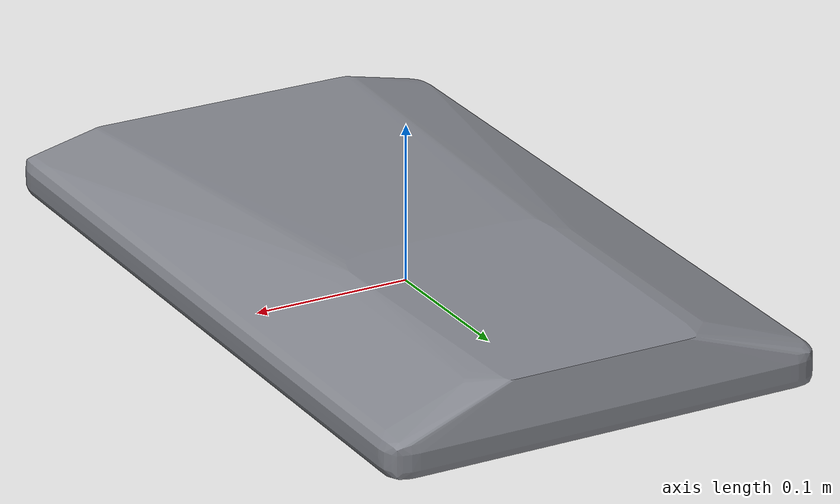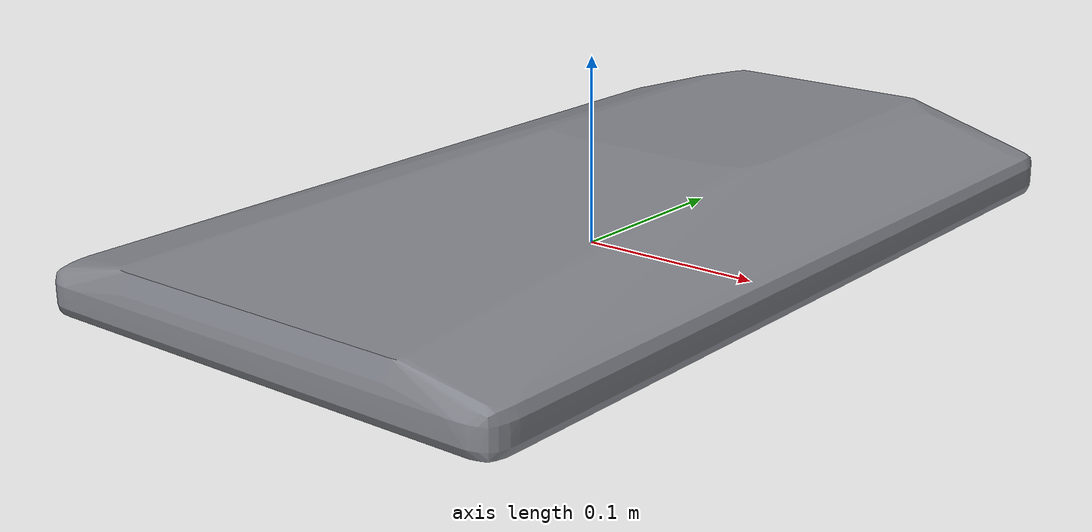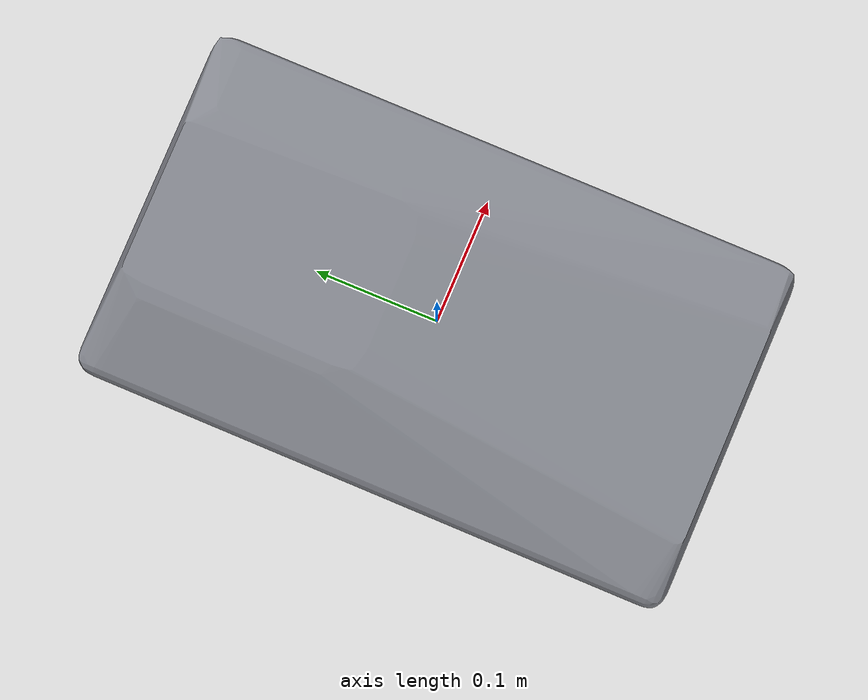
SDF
<?xml version='1.0' encoding='utf-8'?>
<sdf version="1.7">
  <model name="microscopio_msr">
    <static>true</static>
    <link name="link">
      <!-- ===== VISUAL: malla real del STEP =====
           781k facetas. Escala 0.001 porque la malla esta en mm. -->
      <visual name="malla_detallada">
        <geometry>
          <mesh>
            <uri>model://microscopio_msr/meshes/microscopio_visual.stl</uri>
            <scale>0.001 0.001 0.001</scale>
          </mesh>
        </geometry>
        <material>
          <ambient>0.30 0.30 0.32 1</ambient>
          <diffuse>0.52 0.53 0.56 1</diffuse>
          <specular>0.25 0.25 0.28 1</specular>
        </material>
      </visual>
      <!-- ================================================
           COLISION: 16 cajas
           Nombradas por la parte que representan.
           ================================================ -->
      <!-- Enfoque X-LDA025A, POR DEBAJO de la mesa -->
      <!-- Placa base 475 x 275 -->
      <!-- Platina X-ASR100B120B en posicion centrada -->
      <!-- Envolvente barrida, solo visual -->
      <!-- Eje optico, verificado en X = 0, Y = 0 -->
      <collision name="conv_00">
        <geometry>
          <mesh>
            <uri>model://microscopio_msr/meshes/collision/col_00.stl</uri>
            <scale>0.001 0.001 0.001</scale>
          </mesh>
        </geometry>
        <surface>
          <contact>
            <collide_bitmask>0x01</collide_bitmask>
          </contact>
        </surface>
      </collision>
      <collision name="conv_01">
        <geometry>
          <mesh>
            <uri>model://microscopio_msr/meshes/collision/col_01.stl</uri>
            <scale>0.001 0.001 0.001</scale>
          </mesh>
        </geometry>
        <surface>
          <contact>
            <collide_bitmask>0x01</collide_bitmask>
          </contact>
        </surface>
      </collision>
      <collision name="conv_02">
        <geometry>
          <mesh>
            <uri>model://microscopio_msr/meshes/collision/col_02.stl</uri>
            <scale>0.001 0.001 0.001</scale>
          </mesh>
        </geometry>
        <surface>
          <contact>
            <collide_bitmask>0x01</collide_bitmask>
          </contact>
        </surface>
      </collision>
      <collision name="conv_03">
        <geometry>
          <mesh>
            <uri>model://microscopio_msr/meshes/collision/col_03.stl</uri>
            <scale>0.001 0.001 0.001</scale>
          </mesh>
        </geometry>
        <surface>
          <contact>
            <collide_bitmask>0x01</collide_bitmask>
          </contact>
        </surface>
      </collision>
      <collision name="conv_04">
        <geometry>
          <mesh>
            <uri>model://microscopio_msr/meshes/collision/col_04.stl</uri>
            <scale>0.001 0.001 0.001</scale>
          </mesh>
        </geometry>
        <surface>
          <contact>
            <collide_bitmask>0x01</collide_bitmask>
          </contact>
        </surface>
      </collision>
      <collision name="conv_05">
        <geometry>
          <mesh>
            <uri>model://microscopio_msr/meshes/collision/col_05.stl</uri>
            <scale>0.001 0.001 0.001</scale>
          </mesh>
        </geometry>
        <surface>
          <contact>
            <collide_bitmask>0x01</collide_bitmask>
          </contact>
        </surface>
      </collision>
      <collision name="conv_06">
        <geometry>
          <mesh>
            <uri>model://microscopio_msr/meshes/collision/col_06.stl</uri>
            <scale>0.001 0.001 0.001</scale>
          </mesh>
        </geometry>
        <surface>
          <contact>
            <collide_bitmask>0x01</collide_bitmask>
          </contact>
        </surface>
      </collision>
      <collision name="conv_07">
        <geometry>
          <mesh>
            <uri>model://microscopio_msr/meshes/collision/col_07.stl</uri>
            <scale>0.001 0.001 0.001</scale>
          </mesh>
        </geometry>
        <surface>
          <contact>
            <collide_bitmask>0x01</collide_bitmask>
          </contact>
        </surface>
      </collision>
      <collision name="conv_08">
        <geometry>
          <mesh>
            <uri>model://microscopio_msr/meshes/collision/col_08.stl</uri>
            <scale>0.001 0.001 0.001</scale>
          </mesh>
        </geometry>
        <surface>
          <contact>
            <collide_bitmask>0x01</collide_bitmask>
          </contact>
        </surface>
      </collision>
      <collision name="conv_09">
        <geometry>
          <mesh>
            <uri>model://microscopio_msr/meshes/collision/col_09.stl</uri>
            <scale>0.001 0.001 0.001</scale>
          </mesh>
        </geometry>
        <surface>
          <contact>
            <collide_bitmask>0x01</collide_bitmask>
          </contact>
        </surface>
      </collision>
      <collision name="conv_10">
        <geometry>
          <mesh>
            <uri>model://microscopio_msr/meshes/collision/col_10.stl</uri>
            <scale>0.001 0.001 0.001</scale>
          </mesh>
        </geometry>
        <surface>
          <contact>
            <collide_bitmask>0x01</collide_bitmask>
          </contact>
        </surface>
      </collision>
      <collision name="conv_11">
        <geometry>
          <mesh>
            <uri>model://microscopio_msr/meshes/collision/col_11.stl</uri>
            <scale>0.001 0.001 0.001</scale>
          </mesh>
        </geometry>
        <surface>
          <contact>
            <collide_bitmask>0x01</collide_bitmask>
          </contact>
        </surface>
      </collision>
      <collision name="conv_12">
        <geometry>
          <mesh>
            <uri>model://microscopio_msr/meshes/collision/col_12.stl</uri>
            <scale>0.001 0.001 0.001</scale>
          </mesh>
        </geometry>
        <surface>
          <contact>
            <collide_bitmask>0x01</collide_bitmask>
          </contact>
        </surface>
      </collision>
      <collision name="conv_13">
        <geometry>
          <mesh>
            <uri>model://microscopio_msr/meshes/collision/col_13.stl</uri>
            <scale>0.001 0.001 0.001</scale>
          </mesh>
        </geometry>
        <surface>
          <contact>
            <collide_bitmask>0x01</collide_bitmask>
          </contact>
        </surface>
      </collision>
      <collision name="conv_14">
        <geometry>
          <mesh>
            <uri>model://microscopio_msr/meshes/collision/col_14.stl</uri>
            <scale>0.001 0.001 0.001</scale>
          </mesh>
        </geometry>
        <surface>
          <contact>
            <collide_bitmask>0x01</collide_bitmask>
          </contact>
        </surface>
      </collision>
      <collision name="conv_15">
        <geometry>
          <mesh>
            <uri>model://microscopio_msr/meshes/collision/col_15.stl</uri>
            <scale>0.001 0.001 0.001</scale>
          </mesh>
        </geometry>
        <surface>
          <contact>
            <collide_bitmask>0x01</collide_bitmask>
          </contact>
        </surface>
      </collision>
      <collision name="conv_16">
        <geometry>
          <mesh>
            <uri>model://microscopio_msr/meshes/collision/col_16.stl</uri>
            <scale>0.001 0.001 0.001</scale>
          </mesh>
        </geometry>
        <surface>
          <contact>
            <collide_bitmask>0x01</collide_bitmask>
          </contact>
        </surface>
      </collision>
      <collision name="conv_17">
        <geometry>
          <mesh>
            <uri>model://microscopio_msr/meshes/collision/col_17.stl</uri>
            <scale>0.001 0.001 0.001</scale>
          </mesh>
        </geometry>
        <surface>
          <contact>
            <collide_bitmask>0x01</collide_bitmask>
          </contact>
        </surface>
      </collision>
      <collision name="conv_18">
        <geometry>
          <mesh>
            <uri>model://microscopio_msr/meshes/collision/col_18.stl</uri>
            <scale>0.001 0.001 0.001</scale>
          </mesh>
        </geometry>
        <surface>
          <contact>
            <collide_bitmask>0x01</collide_bitmask>
          </contact>
        </surface>
      </collision>
      <collision name="conv_19">
        <geometry>
          <mesh>
            <uri>model://microscopio_msr/meshes/collision/col_19.stl</uri>
            <scale>0.001 0.001 0.001</scale>
          </mesh>
        </geometry>
        <surface>
          <contact>
            <collide_bitmask>0x01</collide_bitmask>
          </contact>
        </surface>
      </collision>
      <collision name="conv_20">
        <geometry>
          <mesh>
            <uri>model://microscopio_msr/meshes/collision/col_20.stl</uri>
            <scale>0.001 0.001 0.001</scale>
          </mesh>
        </geometry>
        <surface>
          <contact>
            <collide_bitmask>0x01</collide_bitmask>
          </contact>
        </surface>
      </collision>
      <collision name="conv_21">
        <geometry>
          <mesh>
            <uri>model://microscopio_msr/meshes/collision/col_21.stl</uri>
            <scale>0.001 0.001 0.001</scale>
          </mesh>
        </geometry>
        <surface>
          <contact>
            <collide_bitmask>0x01</collide_bitmask>
          </contact>
        </surface>
      </collision>
      <collision name="conv_22">
        <geometry>
          <mesh>
            <uri>model://microscopio_msr/meshes/collision/col_22.stl</uri>
            <scale>0.001 0.001 0.001</scale>
          </mesh>
        </geometry>
        <surface>
          <contact>
            <collide_bitmask>0x01</collide_bitmask>
          </contact>
        </surface>
      </collision>
      <collision name="conv_23">
        <geometry>
          <mesh>
            <uri>model://microscopio_msr/meshes/collision/col_23.stl</uri>
            <scale>0.001 0.001 0.001</scale>
          </mesh>
        </geometry>
        <surface>
          <contact>
            <collide_bitmask>0x01</collide_bitmask>
          </contact>
        </surface>
      </collision>
      <collision name="conv_24">
        <geometry>
          <mesh>
            <uri>model://microscopio_msr/meshes/collision/col_24.stl</uri>
            <scale>0.001 0.001 0.001</scale>
          </mesh>
        </geometry>
        <surface>
          <contact>
            <collide_bitmask>0x01</collide_bitmask>
          </contact>
        </surface>
      </collision>
      <collision name="conv_25">
        <geometry>
          <mesh>
            <uri>model://microscopio_msr/meshes/collision/col_25.stl</uri>
            <scale>0.001 0.001 0.001</scale>
          </mesh>
        </geometry>
        <surface>
          <contact>
            <collide_bitmask>0x01</collide_bitmask>
          </contact>
        </surface>
      </collision>
      <collision name="conv_26">
        <geometry>
          <mesh>
            <uri>model://microscopio_msr/meshes/collision/col_26.stl</uri>
            <scale>0.001 0.001 0.001</scale>
          </mesh>
        </geometry>
        <surface>
          <contact>
            <collide_bitmask>0x01</collide_bitmask>
          </contact>
        </surface>
      </collision>
      <collision name="conv_27">
        <geometry>
          <mesh>
            <uri>model://microscopio_msr/meshes/collision/col_27.stl</uri>
            <scale>0.001 0.001 0.001</scale>
          </mesh>
        </geometry>
        <surface>
          <contact>
            <collide_bitmask>0x01</collide_bitmask>
          </contact>
        </surface>
      </collision>
      <collision name="conv_28">
        <geometry>
          <mesh>
            <uri>model://microscopio_msr/meshes/collision/col_28.stl</uri>
            <scale>0.001 0.001 0.001</scale>
          </mesh>
        </geometry>
        <surface>
          <contact>
            <collide_bitmask>0x01</collide_bitmask>
          </contact>
        </surface>
      </collision>
      <collision name="conv_29">
        <geometry>
          <mesh>
            <uri>model://microscopio_msr/meshes/collision/col_29.stl</uri>
            <scale>0.001 0.001 0.001</scale>
          </mesh>
        </geometry>
        <surface>
          <contact>
            <collide_bitmask>0x01</collide_bitmask>
          </contact>
        </surface>
      </collision>
      <collision name="conv_30">
        <geometry>
          <mesh>
            <uri>model://microscopio_msr/meshes/collision/col_30.stl</uri>
            <scale>0.001 0.001 0.001</scale>
          </mesh>
        </geometry>
        <surface>
          <contact>
            <collide_bitmask>0x01</collide_bitmask>
          </contact>
        </surface>
      </collision>
      <collision name="conv_31">
        <geometry>
          <mesh>
            <uri>model://microscopio_msr/meshes/collision/col_31.stl</uri>
            <scale>0.001 0.001 0.001</scale>
          </mesh>
        </geometry>
        <surface>
          <contact>
            <collide_bitmask>0x01</collide_bitmask>
          </contact>
        </surface>
      </collision>
      <collision name="conv_32">
        <geometry>
          <mesh>
            <uri>model://microscopio_msr/meshes/collision/col_32.stl</uri>
            <scale>0.001 0.001 0.001</scale>
          </mesh>
        </geometry>
        <surface>
          <contact>
            <collide_bitmask>0x01</collide_bitmask>
          </contact>
        </surface>
      </collision>
      <collision name="conv_33">
        <geometry>
          <mesh>
            <uri>model://microscopio_msr/meshes/collision/col_33.stl</uri>
            <scale>0.001 0.001 0.001</scale>
          </mesh>
        </geometry>
        <surface>
          <contact>
            <collide_bitmask>0x01</collide_bitmask>
          </contact>
        </surface>
      </collision>
      <collision name="conv_34">
        <geometry>
          <mesh>
            <uri>model://microscopio_msr/meshes/collision/col_34.stl</uri>
            <scale>0.001 0.001 0.001</scale>
          </mesh>
        </geometry>
        <surface>
          <contact>
            <collide_bitmask>0x01</collide_bitmask>
          </contact>
        </surface>
      </collision>
      <collision name="conv_35">
        <geometry>
          <mesh>
            <uri>model://microscopio_msr/meshes/collision/col_35.stl</uri>
            <scale>0.001 0.001 0.001</scale>
          </mesh>
        </geometry>
        <surface>
          <contact>
            <collide_bitmask>0x01</collide_bitmask>
          </contact>
        </surface>
      </collision>
      <collision name="conv_36">
        <geometry>
          <mesh>
            <uri>model://microscopio_msr/meshes/collision/col_36.stl</uri>
            <scale>0.001 0.001 0.001</scale>
          </mesh>
        </geometry>
        <surface>
          <contact>
            <collide_bitmask>0x01</collide_bitmask>
          </contact>
        </surface>
      </collision>
      <collision name="conv_37">
        <geometry>
          <mesh>
            <uri>model://microscopio_msr/meshes/collision/col_37.stl</uri>
            <scale>0.001 0.001 0.001</scale>
          </mesh>
        </geometry>
        <surface>
          <contact>
            <collide_bitmask>0x01</collide_bitmask>
          </contact>
        </surface>
      </collision>
      <collision name="conv_38">
        <geometry>
          <mesh>
            <uri>model://microscopio_msr/meshes/collision/col_38.stl</uri>
            <scale>0.001 0.001 0.001</scale>
          </mesh>
        </geometry>
        <surface>
          <contact>
            <collide_bitmask>0x01</collide_bitmask>
          </contact>
        </surface>
      </collision>
      <collision name="conv_39">
        <geometry>
          <mesh>
            <uri>model://microscopio_msr/meshes/collision/col_39.stl</uri>
            <scale>0.001 0.001 0.001</scale>
          </mesh>
        </geometry>
        <surface>
          <contact>
            <collide_bitmask>0x01</collide_bitmask>
          </contact>
        </surface>
      </collision>
      <collision name="conv_40">
        <geometry>
          <mesh>
            <uri>model://microscopio_msr/meshes/collision/col_40.stl</uri>
            <scale>0.001 0.001 0.001</scale>
          </mesh>
        </geometry>
        <surface>
          <contact>
            <collide_bitmask>0x01</collide_bitmask>
          </contact>
        </surface>
      </collision>
      <collision name="conv_41">
        <geometry>
          <mesh>
            <uri>model://microscopio_msr/meshes/collision/col_41.stl</uri>
            <scale>0.001 0.001 0.001</scale>
          </mesh>
        </geometry>
        <surface>
          <contact>
            <collide_bitmask>0x01</collide_bitmask>
          </contact>
        </surface>
      </collision>
      <collision name="conv_42">
        <geometry>
          <mesh>
            <uri>model://microscopio_msr/meshes/collision/col_42.stl</uri>
            <scale>0.001 0.001 0.001</scale>
          </mesh>
        </geometry>
        <surface>
          <contact>
            <collide_bitmask>0x01</collide_bitmask>
          </contact>
        </surface>
      </collision>
      <collision name="conv_43">
        <geometry>
          <mesh>
            <uri>model://microscopio_msr/meshes/collision/col_43.stl</uri>
            <scale>0.001 0.001 0.001</scale>
          </mesh>
        </geometry>
        <surface>
          <contact>
            <collide_bitmask>0x01</collide_bitmask>
          </contact>
        </surface>
      </collision>
      <collision name="conv_44">
        <geometry>
          <mesh>
            <uri>model://microscopio_msr/meshes/collision/col_44.stl</uri>
            <scale>0.001 0.001 0.001</scale>
          </mesh>
        </geometry>
        <surface>
          <contact>
            <collide_bitmask>0x01</collide_bitmask>
          </contact>
        </surface>
      </collision>
      <collision name="conv_45">
        <geometry>
          <mesh>
            <uri>model://microscopio_msr/meshes/collision/col_45.stl</uri>
            <scale>0.001 0.001 0.001</scale>
          </mesh>
        </geometry>
        <surface>
          <contact>
            <collide_bitmask>0x01</collide_bitmask>
          </contact>
        </surface>
      </collision>
      <collision name="conv_46">
        <geometry>
          <mesh>
            <uri>model://microscopio_msr/meshes/collision/col_46.stl</uri>
            <scale>0.001 0.001 0.001</scale>
          </mesh>
        </geometry>
        <surface>
          <contact>
            <collide_bitmask>0x01</collide_bitmask>
          </contact>
        </surface>
      </collision>
      <collision name="conv_47">
        <geometry>
          <mesh>
            <uri>model://microscopio_msr/meshes/collision/col_47.stl</uri>
            <scale>0.001 0.001 0.001</scale>
          </mesh>
        </geometry>
        <surface>
          <contact>
            <collide_bitmask>0x01</collide_bitmask>
          </contact>
        </surface>
      </collision>
    </link>
  </model>
</sdf>
